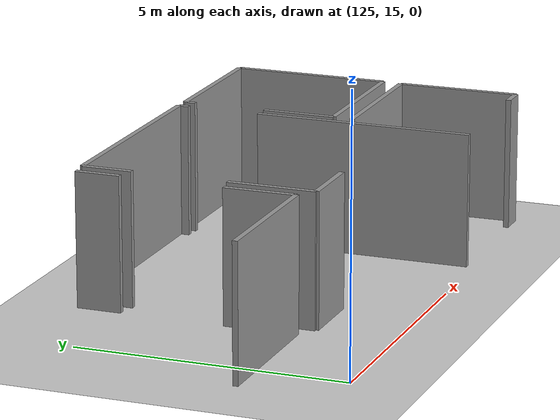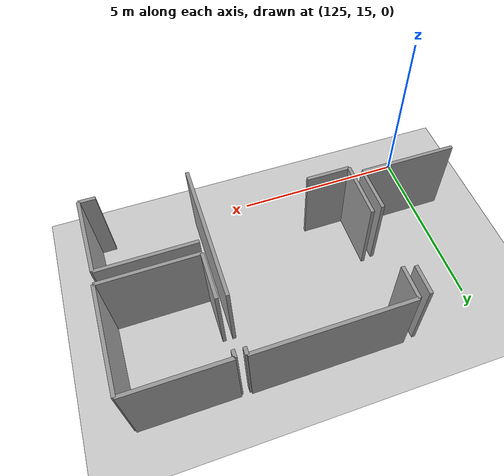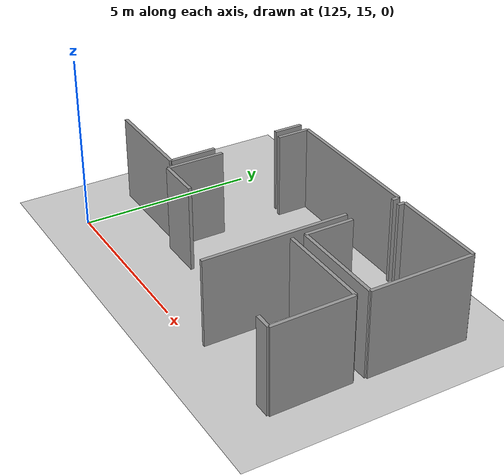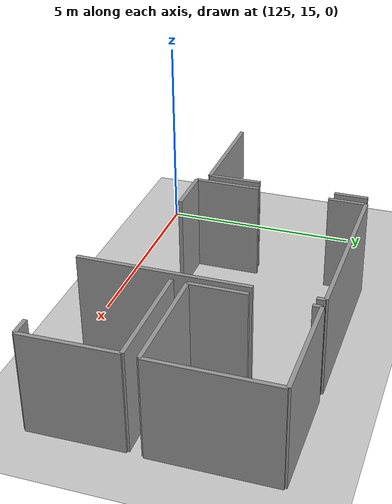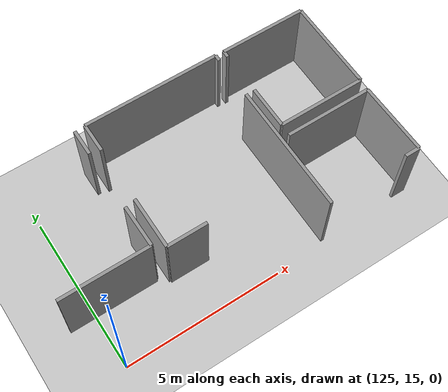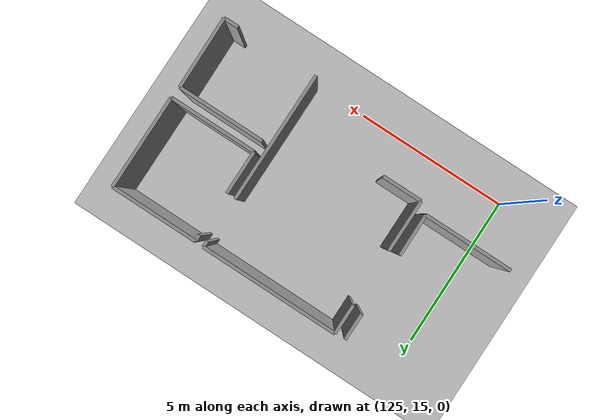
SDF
<sdf version="1.6">
 <world name="default">
  <model name="ground_plane">
   <static>1</static>
   <link name="link">
    <collision name="collision">
     <geometry><plane><normal>0 0 1</normal><size>100 100</size></plane></geometry>
     <surface><friction><ode><mu>100</mu><mu2>50</mu2></ode></friction></surface>
    </collision>
    <visual name="visual">
     <cast_shadows>0</cast_shadows>
     <geometry><plane><normal>0 0 1</normal><size>100 100</size></plane></geometry>
     <material>
      <script><uri>file://media/materials/scripts/gazebo.material</uri><name>Gazebo/Grey</name></script>
     </material>
    </visual>
   </link>
  </model>
  <model name="50037764_PLAN1">
   <static>1</static>
   <link name="Wall_446">
    <collision name="Wall_446_Collision">
     <geometry><box><size>0.465199044181 0.1 2.5</size></box></geometry>
     <pose>0.232599522091 0 1.25 0 0 0</pose>
    </collision>
    <visual name="Wall_446_Visual">
     <pose>0.232599522091 0 1.25 0 0 0</pose>
     <geometry><box><size>0.465199044181 0.1 2.5</size></box></geometry>
     <material>
      <script><uri>file://media/materials/scripts/gazebo.material</uri><name>Gazebo/Grey</name></script>
      <ambient>1 1 1 1</ambient>
     </material>
    </visual>
    <pose>269.786466013 -5.63872082973 0 0 0 3.14159265359</pose>
   </link>
   <link name="Wall_449">
    <collision name="Wall_449_Collision">
     <geometry><box><size>2.74035283949 0.1 2.5</size></box></geometry>
     <pose>1.37017641975 0 1.25 0 0 0</pose>
    </collision>
    <visual name="Wall_449_Visual">
     <pose>1.37017641975 0 1.25 0 0 0</pose>
     <geometry><box><size>2.74035283949 0.1 2.5</size></box></geometry>
     <material>
      <script><uri>file://media/materials/scripts/gazebo.material</uri><name>Gazebo/Grey</name></script>
      <ambient>1 1 1 1</ambient>
     </material>
    </visual>
    <pose>267.015608318 -3.35161929941 0 0 0 0.0</pose>
   </link>
   <link name="Wall_450">
    <collision name="Wall_450_Collision">
     <geometry><box><size>2.28730495479 0.1 2.5</size></box></geometry>
     <pose>1.1436524774 0 1.25 0 0 0</pose>
    </collision>
    <visual name="Wall_450_Visual">
     <pose>1.1436524774 0 1.25 0 0 0</pose>
     <geometry><box><size>2.28730495479 0.1 2.5</size></box></geometry>
     <material>
      <script><uri>file://media/materials/scripts/gazebo.material</uri><name>Gazebo/Grey</name></script>
      <ambient>1 1 1 1</ambient>
     </material>
    </visual>
    <pose>269.755961157 -3.35161929941 0 0 0 -1.55745933836</pose>
   </link>
   <link name="Wall_454">
    <collision name="Wall_454_Collision">
     <geometry><box><size>1.25578321216 0.1 2.5</size></box></geometry>
     <pose>0.627891606081 0 1.25 0 0 0</pose>
    </collision>
    <visual name="Wall_454_Visual">
     <pose>0.627891606081 0 1.25 0 0 0</pose>
     <geometry><box><size>1.25578321216 0.1 2.5</size></box></geometry>
     <material>
      <script><uri>file://media/materials/scripts/gazebo.material</uri><name>Gazebo/Grey</name></script>
      <ambient>1 1 1 1</ambient>
     </material>
    </visual>
    <pose>263.672784585 -4.37121866897 0 0 0 3.14159265359</pose>
   </link>
   <link name="Wall_455">
    <collision name="Wall_455_Collision">
     <geometry><box><size>1.63803447049 0.1 2.5</size></box></geometry>
     <pose>0.819017235243 0 1.25 0 0 0</pose>
    </collision>
    <visual name="Wall_455_Visual">
     <pose>0.819017235243 0 1.25 0 0 0</pose>
     <geometry><box><size>1.63803447049 0.1 2.5</size></box></geometry>
     <material>
      <script><uri>file://media/materials/scripts/gazebo.material</uri><name>Gazebo/Grey</name></script>
      <ambient>1 1 1 1</ambient>
     </material>
    </visual>
    <pose>262.417001373 -4.37121866897 0 0 0 1.57079632679</pose>
   </link>
   <link name="Wall_456">
    <collision name="Wall_456_Collision">
     <geometry><box><size>0.93601606589 0.1 2.5</size></box></geometry>
     <pose>0.468008032945 0 1.25 0 0 0</pose>
    </collision>
    <visual name="Wall_456_Visual">
     <pose>0.468008032945 0 1.25 0 0 0</pose>
     <geometry><box><size>0.93601606589 0.1 2.5</size></box></geometry>
     <material>
      <script><uri>file://media/materials/scripts/gazebo.material</uri><name>Gazebo/Grey</name></script>
      <ambient>1 1 1 1</ambient>
     </material>
    </visual>
    <pose>262.417001373 -0.94473537038 0 0 0 1.57079632679</pose>
   </link>
   <link name="Wall_457">
    <collision name="Wall_457_Collision">
     <geometry><box><size>4.34694188825 0.1 2.5</size></box></geometry>
     <pose>2.17347094413 0 1.25 0 0 0</pose>
    </collision>
    <visual name="Wall_457_Visual">
     <pose>2.17347094413 0 1.25 0 0 0</pose>
     <geometry><box><size>4.34694188825 0.1 2.5</size></box></geometry>
     <material>
      <script><uri>file://media/materials/scripts/gazebo.material</uri><name>Gazebo/Grey</name></script>
      <ambient>1 1 1 1</ambient>
     </material>
    </visual>
    <pose>262.417001373 -0.0087193044893 0 0 0 0.0</pose>
   </link>
   <link name="Wall_458">
    <collision name="Wall_458_Collision">
     <geometry><box><size>0.200569423967 0.1 2.5</size></box></geometry>
     <pose>0.100284711983 0 1.25 0 0 0</pose>
    </collision>
    <visual name="Wall_458_Visual">
     <pose>0.100284711983 0 1.25 0 0 0</pose>
     <geometry><box><size>0.200569423967 0.1 2.5</size></box></geometry>
     <material>
      <script><uri>file://media/materials/scripts/gazebo.material</uri><name>Gazebo/Grey</name></script>
      <ambient>1 1 1 1</ambient>
     </material>
    </visual>
    <pose>266.763943261 -0.0087193044893 0 0 0 -1.57079632679</pose>
   </link>
   <link name="Wall_459">
    <collision name="Wall_459_Collision">
     <geometry><box><size>4.09631986956 0.1 2.5</size></box></geometry>
     <pose>2.04815993478 0 1.25 0 0 0</pose>
    </collision>
    <visual name="Wall_459_Visual">
     <pose>2.04815993478 0 1.25 0 0 0</pose>
     <geometry><box><size>4.09631986956 0.1 2.5</size></box></geometry>
     <material>
      <script><uri>file://media/materials/scripts/gazebo.material</uri><name>Gazebo/Grey</name></script>
      <ambient>1 1 1 1</ambient>
     </material>
    </visual>
    <pose>266.763943261 -1.59878488993 0 0 0 -1.57017575235</pose>
   </link>
   <link name="Wall_460">
    <collision name="Wall_460_Collision">
     <geometry><box><size>2.80390462149 0.1 2.5</size></box></geometry>
     <pose>1.40195231074 0 1.25 0 0 0</pose>
    </collision>
    <visual name="Wall_460_Visual">
     <pose>1.40195231074 0 1.25 0 0 0</pose>
     <geometry><box><size>2.80390462149 0.1 2.5</size></box></geometry>
     <material>
      <script><uri>file://media/materials/scripts/gazebo.material</uri><name>Gazebo/Grey</name></script>
      <ambient>1 1 1 1</ambient>
     </material>
    </visual>
    <pose>262.101784534 -4.12207026285 0 0 0 3.14159265359</pose>
   </link>
   <link name="Wall_463">
    <collision name="Wall_463_Collision">
     <geometry><box><size>0.834155269714 0.1 2.5</size></box></geometry>
     <pose>0.417077634857 0 1.25 0 0 0</pose>
    </collision>
    <visual name="Wall_463_Visual">
     <pose>0.417077634857 0 1.25 0 0 0</pose>
     <geometry><box><size>0.834155269714 0.1 2.5</size></box></geometry>
     <material>
      <script><uri>file://media/materials/scripts/gazebo.material</uri><name>Gazebo/Grey</name></script>
      <ambient>1 1 1 1</ambient>
     </material>
    </visual>
    <pose>262.089074178 -0.0271747419798 0 0 0 -1.57079632679</pose>
   </link>
   <link name="Wall_464">
    <collision name="Wall_464_Collision">
     <geometry><box><size>1.32765756863 0.1 2.5</size></box></geometry>
     <pose>0.663828784316 0 1.25 0 0 0</pose>
    </collision>
    <visual name="Wall_464_Visual">
     <pose>0.663828784316 0 1.25 0 0 0</pose>
     <geometry><box><size>1.32765756863 0.1 2.5</size></box></geometry>
     <material>
      <script><uri>file://media/materials/scripts/gazebo.material</uri><name>Gazebo/Grey</name></script>
      <ambient>1 1 1 1</ambient>
     </material>
    </visual>
    <pose>262.089074178 -2.79447353704 0 0 0 -1.56122266047</pose>
   </link>
   <link name="Wall_465">
    <collision name="Wall_465_Collision">
     <geometry><box><size>2.75052112461 0.1 2.5</size></box></geometry>
     <pose>1.37526056231 0 1.25 0 0 0</pose>
    </collision>
    <visual name="Wall_465_Visual">
     <pose>1.37526056231 0 1.25 0 0 0</pose>
     <geometry><box><size>2.75052112461 0.1 2.5</size></box></geometry>
     <material>
      <script><uri>file://media/materials/scripts/gazebo.material</uri><name>Gazebo/Grey</name></script>
      <ambient>1 1 1 1</ambient>
     </material>
    </visual>
    <pose>269.791550155 -2.97770603488 0 0 0 3.14159265359</pose>
   </link>
   <link name="Wall_466">
    <collision name="Wall_466_Collision">
     <geometry><box><size>1.37114240683 0.1 2.5</size></box></geometry>
     <pose>0.685571203417 0 1.25 0 0 0</pose>
    </collision>
    <visual name="Wall_466_Visual">
     <pose>0.685571203417 0 1.25 0 0 0</pose>
     <geometry><box><size>1.37114240683 0.1 2.5</size></box></geometry>
     <material>
      <script><uri>file://media/materials/scripts/gazebo.material</uri><name>Gazebo/Grey</name></script>
      <ambient>1 1 1 1</ambient>
     </material>
    </visual>
    <pose>267.04102903 -2.97770603488 0 0 0 1.57079632679</pose>
   </link>
   <link name="Wall_467">
    <collision name="Wall_467_Collision">
     <geometry><box><size>0.210254715542 0.1 2.5</size></box></geometry>
     <pose>0.105127357771 0 1.25 0 0 0</pose>
    </collision>
    <visual name="Wall_467_Visual">
     <pose>0.105127357771 0 1.25 0 0 0</pose>
     <geometry><box><size>0.210254715542 0.1 2.5</size></box></geometry>
     <material>
      <script><uri>file://media/materials/scripts/gazebo.material</uri><name>Gazebo/Grey</name></script>
      <ambient>1 1 1 1</ambient>
     </material>
    </visual>
    <pose>267.04102903 -0.233311302049 0 0 0 1.57079632679</pose>
   </link>
   <link name="Wall_468">
    <collision name="Wall_468_Collision">
     <geometry><box><size>2.74797905333 0.1 2.5</size></box></geometry>
     <pose>1.37398952667 0 1.25 0 0 0</pose>
    </collision>
    <visual name="Wall_468_Visual">
     <pose>1.37398952667 0 1.25 0 0 0</pose>
     <geometry><box><size>2.74797905333 0.1 2.5</size></box></geometry>
     <material>
      <script><uri>file://media/materials/scripts/gazebo.material</uri><name>Gazebo/Grey</name></script>
      <ambient>1 1 1 1</ambient>
     </material>
    </visual>
    <pose>267.04102903 -0.0230565865067 0 0 0 0.0</pose>
   </link>
   <link name="Wall_469">
    <collision name="Wall_469_Collision">
     <geometry><box><size>2.95465054192 0.1 2.5</size></box></geometry>
     <pose>1.47732527096 0 1.25 0 0 0</pose>
    </collision>
    <visual name="Wall_469_Visual">
     <pose>1.47732527096 0 1.25 0 0 0</pose>
     <geometry><box><size>2.95465054192 0.1 2.5</size></box></geometry>
     <material>
      <script><uri>file://media/materials/scripts/gazebo.material</uri><name>Gazebo/Grey</name></script>
      <ambient>1 1 1 1</ambient>
     </material>
    </visual>
    <pose>269.789008084 -0.0230565865067 0 0 0 -1.56993596393</pose>
   </link>
   <pose>-135.1 20.8410341146 0 0 0 0</pose>
  </model>
 </world>
</sdf>
